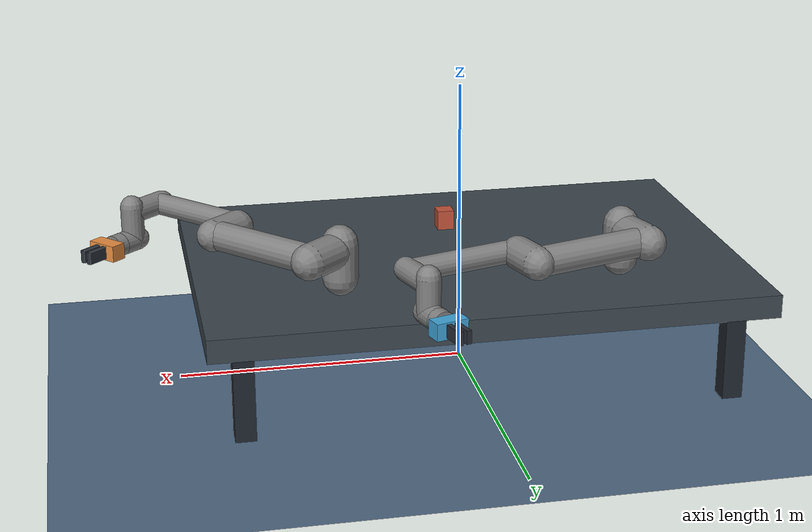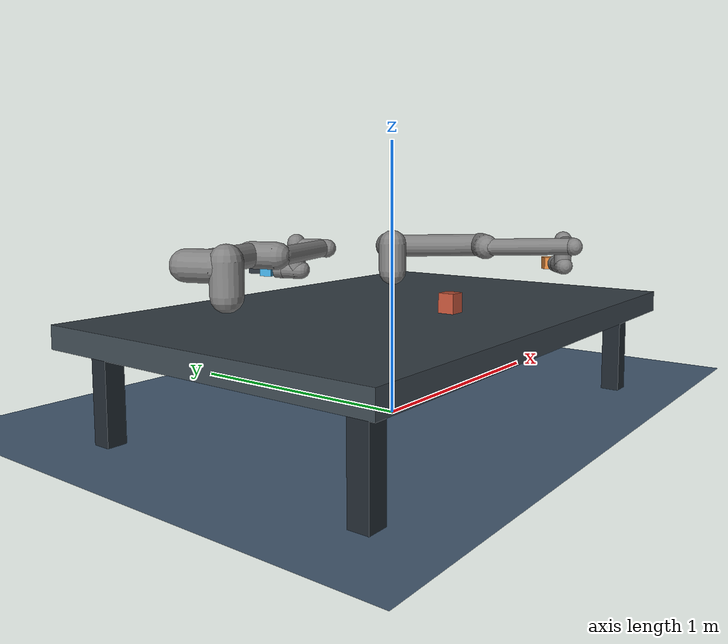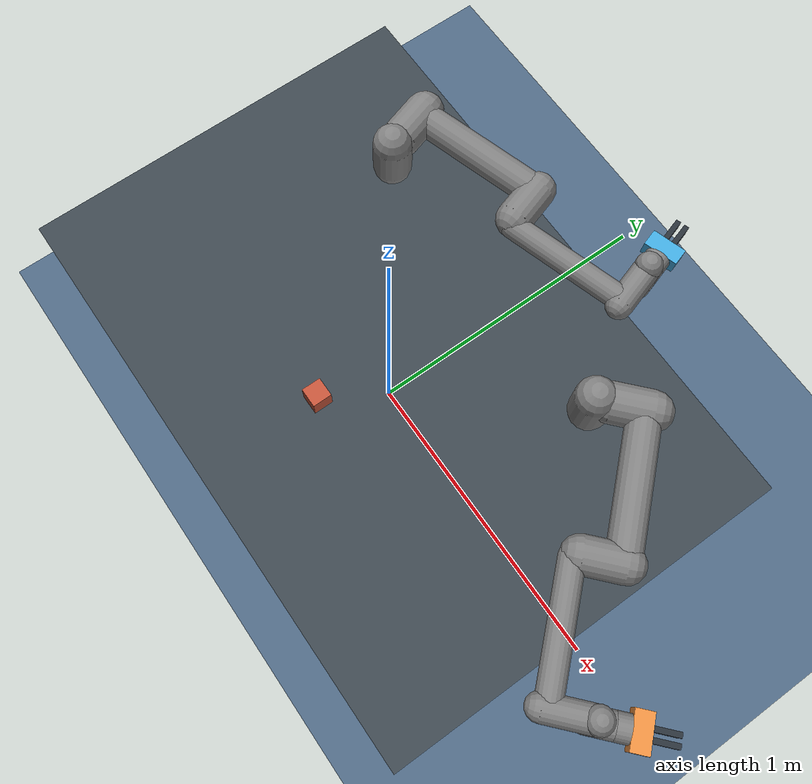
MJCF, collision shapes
<mujoco model="UR5e bimanual workcell">
  <compiler angle="radian" meshdir="assets" autolimits="true" />
  <option integrator="implicitfast" timestep="0.002" />
  <default>
    <default class="ur5e">
      <material specular="0.5" shininess="0.25" />
      <joint axis="0 1 0" range="-6.28319 6.28319" armature="0.1" />
      <general gaintype="fixed" biastype="affine" ctrlrange="-6.2831 6.2831" gainprm="2000" biasprm="0 -2000 -400" forcerange="-150 150" />
      <default class="size3">
        <default class="size3_limited">
          <joint range="-3.1415 3.1415" />
          <general ctrlrange="-3.1415 3.1415" />
        </default>
      </default>
      <default class="size1">
        <general gainprm="500" biasprm="0 -500 -100" forcerange="-28 28" />
      </default>
      <default class="visual">
        <geom type="mesh" contype="0" conaffinity="0" group="2" />
      </default>
      <default class="collision">
        <geom type="capsule" group="3" />
        <default class="eef_collision">
          <geom type="cylinder" />
        </default>
      </default>
      <site size="0.001" rgba="0.5 0.5 0.5 0.3" group="4" />
    </default>
  </default>
  <asset>
    <material class="ur5e" name="black" rgba="0.033 0.033 0.033 1" />
    <material class="ur5e" name="jointgray" rgba="0.278 0.278 0.278 1" />
    <material class="ur5e" name="linkgray" rgba="0.82 0.82 0.82 1" />
    <material class="ur5e" name="urblue" rgba="0.49 0.678 0.8 1" />
    <mesh file="base_0.obj" />
    <mesh file="base_1.obj" />
    <mesh file="shoulder_0.obj" />
    <mesh file="shoulder_1.obj" />
    <mesh file="shoulder_2.obj" />
    <mesh file="upperarm_0.obj" />
    <mesh file="upperarm_1.obj" />
    <mesh file="upperarm_2.obj" />
    <mesh file="upperarm_3.obj" />
    <mesh file="forearm_0.obj" />
    <mesh file="forearm_1.obj" />
    <mesh file="forearm_2.obj" />
    <mesh file="forearm_3.obj" />
    <mesh file="wrist1_0.obj" />
    <mesh file="wrist1_1.obj" />
    <mesh file="wrist1_2.obj" />
    <mesh file="wrist2_0.obj" />
    <mesh file="wrist2_1.obj" />
    <mesh file="wrist2_2.obj" />
    <mesh file="wrist3.obj" />
  </asset>
  <worldbody>
    <geom name="floor" type="plane" size="3 3 .05" rgba=".3 .4 .5 1" />
    <geom name="table" type="box" pos="0 0 .36" size=".95 .65 .04" rgba=".23 .27 .30 1" friction="1 .005 .0001" />
    <geom type="box" pos="-0.83 -0.53 .16" size=".035 .035 .16" rgba=".12 .15 .18 1" />
    <geom type="box" pos="-0.83 0.53 .16" size=".035 .035 .16" rgba=".12 .15 .18 1" />
    <geom type="box" pos="0.83 -0.53 .16" size=".035 .035 .16" rgba=".12 .15 .18 1" />
    <geom type="box" pos="0.83 0.53 .16" size=".035 .035 .16" rgba=".12 .15 .18 1" />
    <body name="left_base" quat="0.9887710779360422 0 0 0.14943813247359922" childclass="ur5e" pos="-0.48 .35 .40">
      <inertial mass="4.0" pos="0 0 0" diaginertia="0.00443333156 0.00443333156 0.0072" />
      <geom mesh="base_0" material="black" class="visual" />
      <geom mesh="base_1" material="jointgray" class="visual" />
      <body name="left_shoulder_link" pos="0 0 0.163">
        <inertial mass="3.7" pos="0 0 0" diaginertia="0.0102675 0.0102675 0.00666" />
        <joint name="left_shoulder_pan_joint" class="size3" axis="0 0 1" />
        <geom mesh="shoulder_0" material="urblue" class="visual" />
        <geom mesh="shoulder_1" material="black" class="visual" />
        <geom mesh="shoulder_2" material="jointgray" class="visual" />
        <geom class="collision" size="0.06 0.06" pos="0 0 -0.04" />
        <body name="left_upper_arm_link" pos="0 0.138 0" quat="1 0 1 0">
          <inertial mass="8.393" pos="0 0 0.2125" diaginertia="0.133886 0.133886 0.0151074" />
          <joint name="left_shoulder_lift_joint" class="size3" />
          <geom mesh="upperarm_0" material="linkgray" class="visual" />
          <geom mesh="upperarm_1" material="black" class="visual" />
          <geom mesh="upperarm_2" material="jointgray" class="visual" />
          <geom mesh="upperarm_3" material="urblue" class="visual" />
          <geom class="collision" pos="0 -0.04 0" quat="1 1 0 0" size="0.06 0.06" />
          <geom class="collision" size="0.05 0.2" pos="0 0 0.2" />
          <body name="left_forearm_link" pos="0 -0.131 0.425">
            <inertial mass="2.275" pos="0 0 0.196" diaginertia="0.0311796 0.0311796 0.004095" />
            <joint name="left_elbow_joint" class="size3_limited" />
            <geom mesh="forearm_0" material="urblue" class="visual" />
            <geom mesh="forearm_1" material="linkgray" class="visual" />
            <geom mesh="forearm_2" material="black" class="visual" />
            <geom mesh="forearm_3" material="jointgray" class="visual" />
            <geom class="collision" pos="0 0.08 0" quat="1 1 0 0" size="0.055 0.06" />
            <geom class="collision" size="0.038 0.19" pos="0 0 0.2" />
            <body name="left_wrist_1_link" pos="0 0 0.392" quat="1 0 1 0">
              <inertial mass="1.219" pos="0 0.127 0" diaginertia="0.0025599 0.0025599 0.0021942" />
              <joint name="left_wrist_1_joint" class="size1" />
              <geom mesh="wrist1_0" material="black" class="visual" />
              <geom mesh="wrist1_1" material="urblue" class="visual" />
              <geom mesh="wrist1_2" material="jointgray" class="visual" />
              <geom class="collision" pos="0 0.05 0" quat="1 1 0 0" size="0.04 0.07" />
              <body name="left_wrist_2_link" pos="0 0.127 0">
                <inertial mass="1.219" pos="0 0 0.1" diaginertia="0.0025599 0.0025599 0.0021942" />
                <joint name="left_wrist_2_joint" axis="0 0 1" class="size1" />
                <geom mesh="wrist2_0" material="black" class="visual" />
                <geom mesh="wrist2_1" material="urblue" class="visual" />
                <geom mesh="wrist2_2" material="jointgray" class="visual" />
                <geom class="collision" size="0.04 0.06" pos="0 0 0.04" />
                <geom class="collision" pos="0 0.02 0.1" quat="1 1 0 0" size="0.04 0.04" />
                <body name="left_wrist_3_link" pos="0 0 0.1">
                  <inertial mass="0.1889" pos="0 0.0771683 0" quat="1 0 0 1" diaginertia="0.000132134 9.90863e-05 9.90863e-05" />
                  <joint name="left_wrist_3_joint" class="size1" />
                  <geom material="linkgray" mesh="wrist3" class="visual" />
                  <geom class="eef_collision" pos="0 0.08 0" quat="1 1 0 0" size="0.04 0.02" />
                  <site name="left_attachment_site" pos="0 0.1 0" quat="-1 1 0 0" />
                  <body name="left_gripper" pos="0 .1 0" quat="-1 1 0 0">
                    <geom type="box" pos="0 0 .027" size=".055 .028 .027" rgba=".25 .65 .85 1" mass=".25" />
                    <body name="left_finger_0" pos="-0.014 0 .054">
                      <joint name="left_finger_joint_0" type="slide" axis="-1 0 0" range="0 .035" damping="2" armature=".01" />
                      <geom type="box" pos="0 0 .037" size=".008 .022 .037" rgba=".16 .19 .22 1" mass=".06" friction="1.5 .01 .001" />
                    </body>
                    <body name="left_finger_1" pos="0.014 0 .054">
                      <joint name="left_finger_joint_1" type="slide" axis="1 0 0" range="0 .035" damping="2" armature=".01" />
                      <geom type="box" pos="0 0 .037" size=".008 .022 .037" rgba=".16 .19 .22 1" mass=".06" friction="1.5 .01 .001" />
                    </body>
                    <site name="left_tcp" pos="0 0 .11" />
                  </body>
                </body>
              </body>
            </body>
          </body>
        </body>
      </body>
    </body>
    <body name="right_base" quat="0.9151163204946318 0 0 -0.4031899303856266" childclass="ur5e" pos="0.48 .35 .40">
      <inertial mass="4.0" pos="0 0 0" diaginertia="0.00443333156 0.00443333156 0.0072" />
      <geom mesh="base_0" material="black" class="visual" />
      <geom mesh="base_1" material="jointgray" class="visual" />
      <body name="right_shoulder_link" pos="0 0 0.163">
        <inertial mass="3.7" pos="0 0 0" diaginertia="0.0102675 0.0102675 0.00666" />
        <joint name="right_shoulder_pan_joint" class="size3" axis="0 0 1" />
        <geom mesh="shoulder_0" material="urblue" class="visual" />
        <geom mesh="shoulder_1" material="black" class="visual" />
        <geom mesh="shoulder_2" material="jointgray" class="visual" />
        <geom class="collision" size="0.06 0.06" pos="0 0 -0.04" />
        <body name="right_upper_arm_link" pos="0 0.138 0" quat="1 0 1 0">
          <inertial mass="8.393" pos="0 0 0.2125" diaginertia="0.133886 0.133886 0.0151074" />
          <joint name="right_shoulder_lift_joint" class="size3" />
          <geom mesh="upperarm_0" material="linkgray" class="visual" />
          <geom mesh="upperarm_1" material="black" class="visual" />
          <geom mesh="upperarm_2" material="jointgray" class="visual" />
          <geom mesh="upperarm_3" material="urblue" class="visual" />
          <geom class="collision" pos="0 -0.04 0" quat="1 1 0 0" size="0.06 0.06" />
          <geom class="collision" size="0.05 0.2" pos="0 0 0.2" />
          <body name="right_forearm_link" pos="0 -0.131 0.425">
            <inertial mass="2.275" pos="0 0 0.196" diaginertia="0.0311796 0.0311796 0.004095" />
            <joint name="right_elbow_joint" class="size3_limited" />
            <geom mesh="forearm_0" material="urblue" class="visual" />
            <geom mesh="forearm_1" material="linkgray" class="visual" />
            <geom mesh="forearm_2" material="black" class="visual" />
            <geom mesh="forearm_3" material="jointgray" class="visual" />
            <geom class="collision" pos="0 0.08 0" quat="1 1 0 0" size="0.055 0.06" />
            <geom class="collision" size="0.038 0.19" pos="0 0 0.2" />
            <body name="right_wrist_1_link" pos="0 0 0.392" quat="1 0 1 0">
              <inertial mass="1.219" pos="0 0.127 0" diaginertia="0.0025599 0.0025599 0.0021942" />
              <joint name="right_wrist_1_joint" class="size1" />
              <geom mesh="wrist1_0" material="black" class="visual" />
              <geom mesh="wrist1_1" material="urblue" class="visual" />
              <geom mesh="wrist1_2" material="jointgray" class="visual" />
              <geom class="collision" pos="0 0.05 0" quat="1 1 0 0" size="0.04 0.07" />
              <body name="right_wrist_2_link" pos="0 0.127 0">
                <inertial mass="1.219" pos="0 0 0.1" diaginertia="0.0025599 0.0025599 0.0021942" />
                <joint name="right_wrist_2_joint" axis="0 0 1" class="size1" />
                <geom mesh="wrist2_0" material="black" class="visual" />
                <geom mesh="wrist2_1" material="urblue" class="visual" />
                <geom mesh="wrist2_2" material="jointgray" class="visual" />
                <geom class="collision" size="0.04 0.06" pos="0 0 0.04" />
                <geom class="collision" pos="0 0.02 0.1" quat="1 1 0 0" size="0.04 0.04" />
                <body name="right_wrist_3_link" pos="0 0 0.1">
                  <inertial mass="0.1889" pos="0 0.0771683 0" quat="1 0 0 1" diaginertia="0.000132134 9.90863e-05 9.90863e-05" />
                  <joint name="right_wrist_3_joint" class="size1" />
                  <geom material="linkgray" mesh="wrist3" class="visual" />
                  <geom class="eef_collision" pos="0 0.08 0" quat="1 1 0 0" size="0.04 0.02" />
                  <site name="right_attachment_site" pos="0 0.1 0" quat="-1 1 0 0" />
                  <body name="right_gripper" pos="0 .1 0" quat="-1 1 0 0">
                    <geom type="box" pos="0 0 .027" size=".055 .028 .027" rgba=".9 .55 .25 1" mass=".25" />
                    <body name="right_finger_0" pos="-0.014 0 .054">
                      <joint name="right_finger_joint_0" type="slide" axis="-1 0 0" range="0 .035" damping="2" armature=".01" />
                      <geom type="box" pos="0 0 .037" size=".008 .022 .037" rgba=".16 .19 .22 1" mass=".06" friction="1.5 .01 .001" />
                    </body>
                    <body name="right_finger_1" pos="0.014 0 .054">
                      <joint name="right_finger_joint_1" type="slide" axis="1 0 0" range="0 .035" damping="2" armature=".01" />
                      <geom type="box" pos="0 0 .037" size=".008 .022 .037" rgba=".16 .19 .22 1" mass=".06" friction="1.5 .01 .001" />
                    </body>
                    <site name="right_tcp" pos="0 0 .11" />
                  </body>
                </body>
              </body>
            </body>
          </body>
        </body>
      </body>
    </body>
    <body name="block" pos="0 -.25 .435">
      <freejoint name="block_free" />
      <geom name="block_geom" type="box" size=".03 .03 .035" mass=".08" rgba=".75 .32 .22 1" friction="1.2 .01 .001" condim="4" />
    </body>
  </worldbody>
  <actuator>
    <general class="size3" name="left_shoulder_pan" joint="left_shoulder_pan_joint" />
    <general class="size3" name="left_shoulder_lift" joint="left_shoulder_lift_joint" />
    <general class="size3_limited" name="left_elbow" joint="left_elbow_joint" />
    <general class="size1" name="left_wrist_1" joint="left_wrist_1_joint" />
    <general class="size1" name="left_wrist_2" joint="left_wrist_2_joint" />
    <general class="size1" name="left_wrist_3" joint="left_wrist_3_joint" />
    <position name="left_grip" joint="left_finger_joint_0" kp="200" kv="10" ctrlrange="0 .035" forcerange="-20 20" />
    <general class="size3" name="right_shoulder_pan" joint="right_shoulder_pan_joint" />
    <general class="size3" name="right_shoulder_lift" joint="right_shoulder_lift_joint" />
    <general class="size3_limited" name="right_elbow" joint="right_elbow_joint" />
    <general class="size1" name="right_wrist_1" joint="right_wrist_1_joint" />
    <general class="size1" name="right_wrist_2" joint="right_wrist_2_joint" />
    <general class="size1" name="right_wrist_3" joint="right_wrist_3_joint" />
    <position name="right_grip" joint="right_finger_joint_0" kp="200" kv="10" ctrlrange="0 .035" forcerange="-20 20" />
  </actuator>
  <equality>
    <joint joint1="left_finger_joint_1" joint2="left_finger_joint_0" polycoef="0 1 0 0 0" />
    <joint joint1="right_finger_joint_1" joint2="right_finger_joint_0" polycoef="0 1 0 0 0" />
  </equality>
  <keyframe>
    <key name="home" qpos="-1.5708 -1.5708 1.5708 -1.5708 -1.5708 0 0.035 0.035 -1.5708 -1.5708 1.5708 -1.5708 -1.5708 0 0.035 0.035 0 -0.25 0.435 1 0 0 0" ctrl="-1.5708 -1.5708 1.5708 -1.5708 -1.5708 0 0.035 -1.5708 -1.5708 1.5708 -1.5708 -1.5708 0 0.035" />
  </keyframe>
</mujoco>
